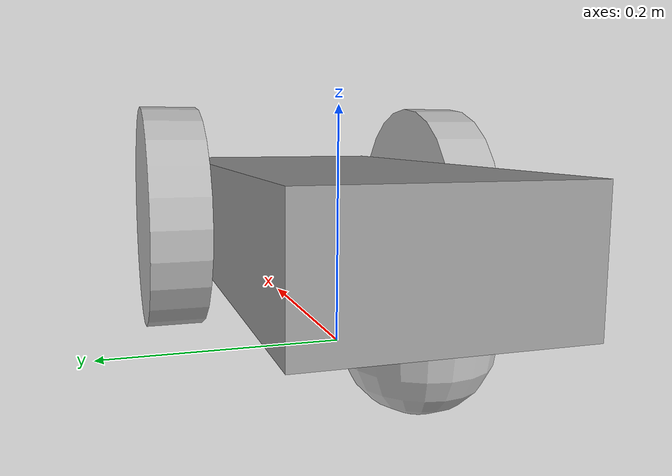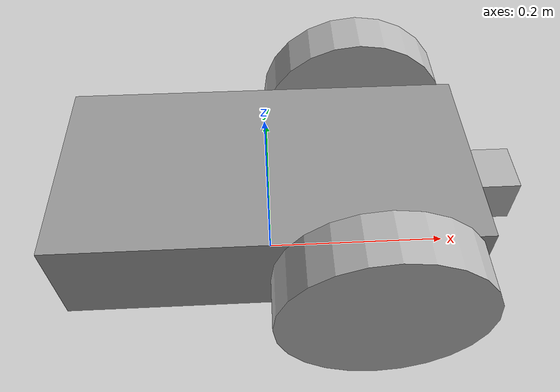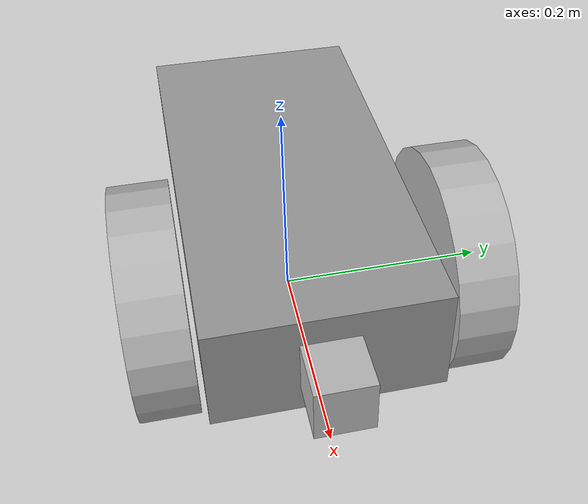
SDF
<?xml version="1.0"?>
<sdf version="1.5">
  <model name = "moving_cube">
    <static>false</static>

    <!-- LINKS -->

    <link name="cube_base">
      <inertial>
        <mass>15.0</mass>
        <origin xyz="0.0 0 0.1" rpy=" 0 0 0"/>
        <inertia>
          <ixx>0.1</ixx> <ixy>0</ixy> <ixz>0</ixz>
          <iyy>0.1</iyy> <iyz>0</iyz>
          <izz>0.1</izz>
        </inertia>
      </inertial>
      <pose>0 0 0.1 0 0 0</pose>
      <collision name="collision">
        <geometry>
          <box>
            <size>0.4 0.2 0.1</size>
          </box>
        </geometry>
        <surface>
          <friction>
            <ode>
              <mu>0</mu>
              <mu2>0</mu2>
            </ode>
          </friction>
        </surface>
      </collision>
      <visual name="visual">
        <geometry>
          <box>
            <size>0.4 0.2 0.1</size>
          </box>
        </geometry>
        <material>
          <script>
            <uri>file://media/materials/scripts/gazebo.material</uri>
            <name>Gazebo/Grey</name>
          </script>
        </material>
      </visual>

      <collision name = 'caster_collision'>
        <pose>-0.15 0 -0.05 0 0 0</pose>
        <geometry>
          <sphere>
            <radius>0.05</radius>
          </sphere>
        </geometry>

        <surface>
          <friction>
            <ode>
              <mu>0</mu>
              <mu2>0</mu2>
              <slip1>0.1</slip1>
              <slip2>0.1</slip2>
            </ode>
          </friction>
        </surface>
      </collision>

      <visual name='caster_collision'>
        <pose>-0.15 0 -0.05 0 0 0</pose>
        <geometry>
          <sphere>
            <radius>0.05</radius>
          </sphere>
        </geometry>
      </visual>

    </link>

    <link name='left_wheel'>
      <pose>0.1 0.13 0.1 0 1.5707 1.5707 </pose>
        <collision name='  collision'>
           <geometry>
            <cylinder>
              <radius>.1</radius>
              <length>0.05</length>
            </cylinder>
          </geometry>
        </collision>

        <visual name='visual'>
          <geometry>
            <cylinder>
              <radius>.1</radius>
              <length>0.05</length>
            </cylinder>
          </geometry>
        </visual>
    </link>

    <link name='right_wheel'>
      <pose>0.1 -0.13 0.1 0 1.5707 1.5707 </pose>
        <collision name='  collision'>
           <geometry>
            <cylinder>
              <radius>.1</radius>
              <length>0.05</length>
            </cylinder>
          </geometry>
        </collision>

        <visual name='visual'>
          <geometry>
            <cylinder>
              <radius>.1</radius>
              <length>0.05</length>
            </cylinder>
          </geometry>
        </visual>
    </link>

    <link name='RealSense'>
      <pose>0.225 0 0.1 0 0 0</pose>
      <inertial>
        <mass>0.1</mass>
        <inertia>
          <ixx>0.000166667</ixx>
          <iyy>0.000166667</iyy>
          <izz>0.000166667</izz>
        </inertia>
      </inertial>
        <collision name='collision'>
           <geometry>
            <box>
              <size>0.05 0.05 0.05</size>
            </box>
          </geometry>
        </collision>

        <visual name='visual'>
          <geometry>
            <box>
              <size>0.05 0.05 0.05</size>
            </box>
          </geometry>
        </visual>
        <sensor name="camera" type="depth">
          <update_rate>20</update_rate>
          <camera>
            <horizontal_fov>1.5</horizontal_fov>
            <image>
              <width>640</width>
              <height>480</height>
              <format>R8G8B8</format>
            </image>
            <clip>
              <near>0.05</near>
              <far>100</far>
            </clip>
          </camera>
          <!-- camera plugin -->
          <plugin name="camera_plugin" filename="libgazebo_ros_openni_kinect.so">
            <baseline>0.2</baseline>
            <alwaysOn>true</alwaysOn>
            <updateRate>0.0</updateRate>
            <cameraName>camera_ir</cameraName>
            <imageTopicName>/camera/color/image_raw</imageTopicName>
            <cameraInfoTopicName>/camera/color/camera_info</cameraInfoTopicName>
            <depthImageTopicName>/camera/depth/image_raw</depthImageTopicName>
            <depthImageCameraInfoTopicName>/camera/depth/camera_info</depthImageCameraInfoTopicName>
            <pointCloudTopicName>/camera/depth/points</pointCloudTopicName>
            <frameName>camera_link</frameName>
            <pointCloudCutoff>0.5</pointCloudCutoff>
            <pointCloudCutoffMax>3.0</pointCloudCutoffMax>
            <distortionK1>0</distortionK1>
            <distortionK2>0</distortionK2>
            <distortionK3>0</distortionK3>
            <distortionT1>0</distortionT1>
            <distortionT2>0</distortionT2>
            <CxPrime>0</CxPrime>
            <Cx>0</Cx>
            <Cy>0</Cy>
            <focalLength>0</focalLength>
            <hackBaseline>0</hackBaseline>
          </plugin>
        </sensor>
    </link>

    <!-- JOINTS -->
    <joint type='revolute' name='left_wheel_hinge'>
      <pose>0 0 -0.03 0 0 0</pose>
      <child>left_wheel</child>
      <parent>cube_base</parent>
      <axis>
        <xyz>0 0 1</xyz>
      </axis>
    </joint>

    <joint type='revolute' name='right_wheel_hinge'>
      <pose>0 0 0.03 0 0 0</pose>
      <child>right_wheel</child>
      <parent>cube_base</parent>
      <axis>
        <xyz>0 0 1</xyz>
      </axis>
    </joint>

    <joint type='fixed' name='RealSenseJoint'>
      <pose>0 0 0 0 0 0</pose>
      <child>RealSense</child>
      <parent>cube_base</parent>
      <axis>
        <xyz>0 0 1</xyz>
      </axis>
    </joint>

    <!-- PLUGINS -->
    <plugin name="cube_moving_code" filename="libgazebo_ros_diff_drive.so">
        <commandTopic>cmd_vel</commandTopic>
        <odometryTopic>odom</odometryTopic>
        <odometryFrame>odom</odometryFrame>
        <odometrySource>world</odometrySource>
        <publishOdomTF>true</publishOdomTF>
        <robotBaseFrame>cube_base</robotBaseFrame>
        <publishWheelTF>false</publishWheelTF>
        <publishTf>true</publishTf>
        <publishWheelJointState>true</publishWheelJointState>
        <legacyMode>false</legacyMode>
        <updateRate>30</updateRate>
        <leftJoint>left_wheel_hinge</leftJoint>
        <rightJoint>right_wheel_hinge</rightJoint>
        <wheelSeparation>0.4</wheelSeparation>
        <wheelDiameter>0.2</wheelDiameter>
        <rosDebugLevel>na</rosDebugLevel>
      </plugin>
  </model>
</sdf>
